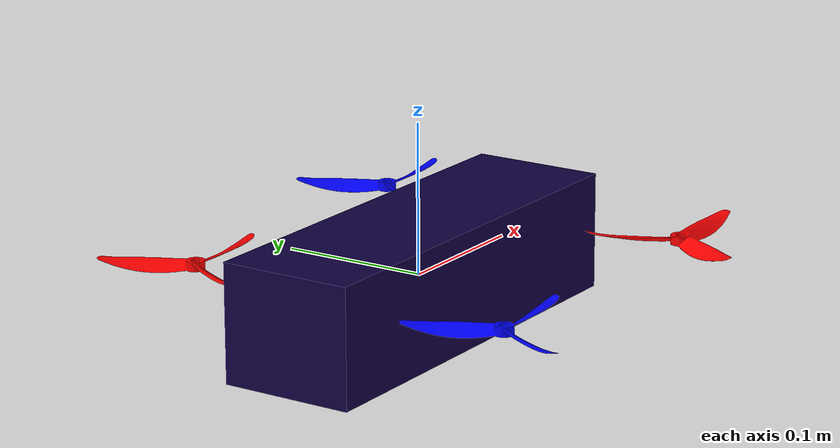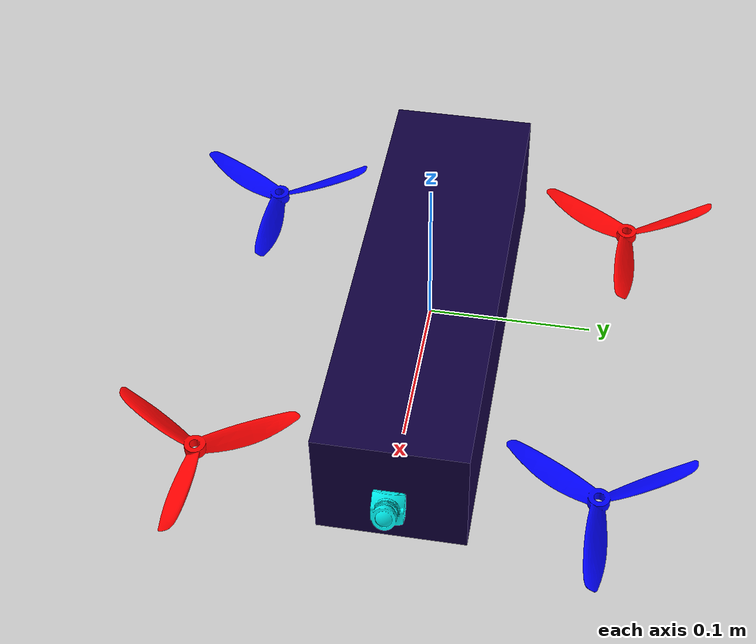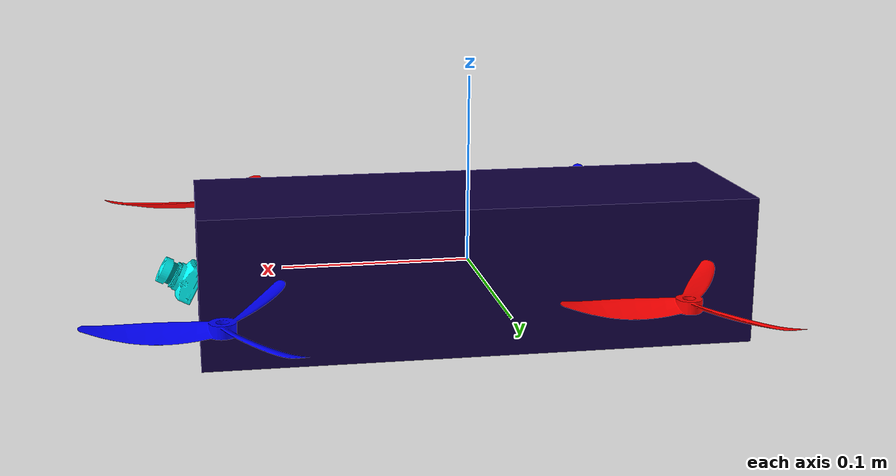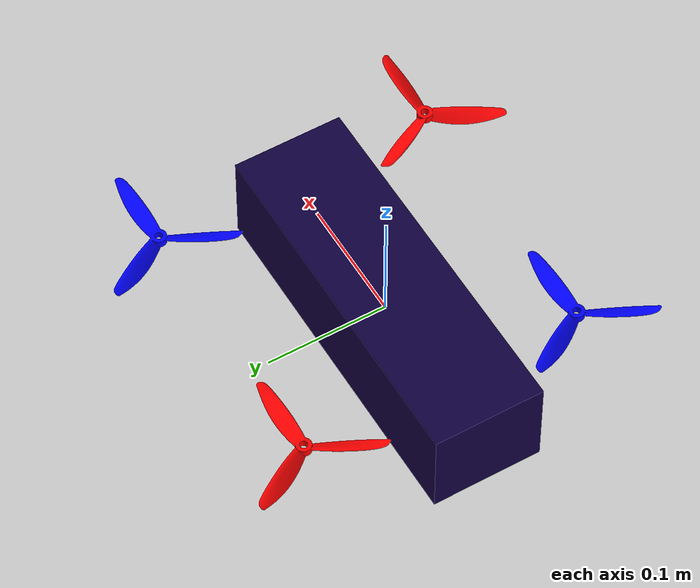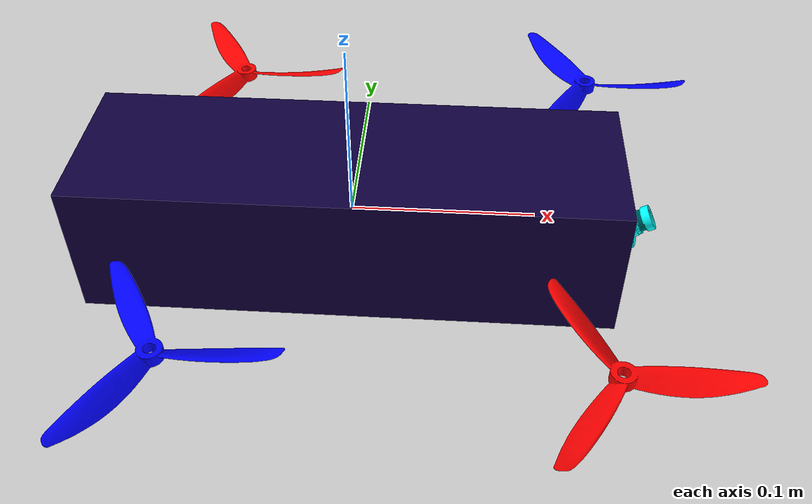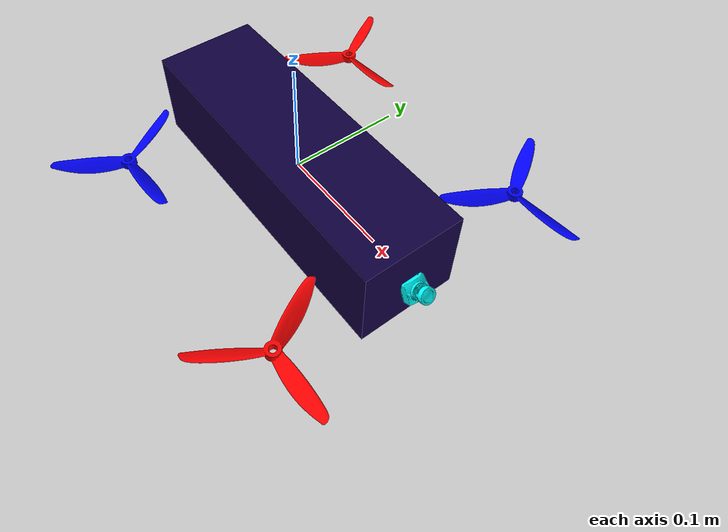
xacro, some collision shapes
<?xml version="1.0"?>
<robot name="fpv_drone" xmlns:xacro="http://www.ros.org/wiki/xacro">

  <xacro:arg name="package_name" default="fpv_drone" />
  <xacro:arg name="namespace" default="fpv_drone" />
  <xacro:arg name="rgb_base" default="0.0625 0 0.25" />
  <xacro:arg name="rgb_cam" default="0 1 1" />
  <xacro:arg name="rgb_ccw" default="1 0 0" />
  <xacro:arg name="rgb_cw" default="0 0 1" />
  <xacro:arg name="rpy" default="0 0 0" />
  <xacro:arg name="xyz" default="0 0 0" />
  <xacro:arg name="sitl" default="false" />
  <xacro:arg name="gimbal" default="false" />
  <xacro:arg name="instance" default="0" />

  <xacro:property name="package_name" value="$(arg package_name)" />
  <xacro:property name="namespace" value="$(arg namespace)" />
  <xacro:property name="rgb_base" value="$(arg rgb_base)" />
  <xacro:property name="rgb_cam" value="$(arg rgb_cam)" />
  <xacro:property name="rgb_ccw" value="$(arg rgb_ccw)" />
  <xacro:property name="rgb_cw" value="$(arg rgb_cw)" />
  <xacro:property name="rpy" value="$(arg rpy)" />
  <xacro:property name="xyz" value="$(arg xyz)" />
  <xacro:property name="sitl" value="$(arg sitl)" />
  <xacro:property name="gimbal" value="$(arg gimbal)" />
  <xacro:property name="instance" value="$(arg instance)" />

  <xacro:property name="parent_link" value="${namespace}_footprint" />

  <xacro:include filename="$(find fpv_drone)/urdf/macro_fpv_drone.xacro" />

  <link name="${parent_link}" />

  <xacro:macro_fpv_drone package_name="${package_name}" namespace="${namespace}"
    parent_link="${parent_link}" rgb_base="${rgb_base}" rgb_cam="${rgb_cam}"
    rgb_ccw="${rgb_ccw}" rgb_cw="${rgb_cw}" rpy="${rpy}" xyz="${xyz}" />

  <xacro:if value="${gimbal}">
    <xacro:include filename="$(find fpv_drone)/urdf/macro_gimbal_3d.xacro" />
    <xacro:macro_gimbal_3d package_name="${package_name}" namespace="${namespace}"
      parent_link="${parent_link}" rgb="${rgb_cam}" instance="${instance}"
      rpy="1.5707963267948966 0 1.5707963267948966" xyz="0 -0.01 -0.11775" />
  </xacro:if>

  <xacro:if value="${sitl}">
    <xacro:include filename="$(find fpv_drone)/urdf/macro_sitl_core.xacro" />
    <xacro:macro_sitl_core namespace="${namespace}" instance="${instance}" gimbal="${gimbal}" />
  </xacro:if>
</robot>

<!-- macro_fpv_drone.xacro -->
<robot xmlns:xacro="http://www.ros.org/wiki/xacro">

  <xacro:macro name="macro_fpv_drone"
    params="package_name:='fpv_drone' namespace:='fpv_drone' parent_link:='fpv_drone_footprint' rgb_base:='0.0625 0 0.25' rgb_cam:='0 1 1' rgb_ccw:='1 0 0' rgb_cw:='0 1 0' rpy:='0 0 0' xyz:='0 0 0'">

    <xacro:include filename="$(find ${package_name})/urdf/macro_fpv_base.xacro" />
    <xacro:include filename="$(find ${package_name})/urdf/macro_fpv_cam.xacro" />
    <xacro:include filename="$(find ${package_name})/urdf/macro_fpv_motor.xacro" />

    <xacro:macro_fpv_base package_name="${package_name}" namespace="${namespace}"
      parent_link="${parent_link}" rgb="${rgb_base}" rpy="${rpy}" xyz="${xyz}" />

    <xacro:macro_fpv_cam package_name="${package_name}" namespace="${namespace}"
      parent_link="${namespace}_base_link"
      rgb="${rgb_cam}" rpy="0 -0.47787 0" xyz="0.16346 -0.0002193 0.0023036" />

    <xacro:macro_fpv_motor package_name="${package_name}" namespace="${namespace}"
      parent_link="${namespace}_base_link"
      prefix="fr" rgb="${rgb_ccw}" rpy="0 0 0" xyz="0.1354 -0.11535 0.018367" />
    <xacro:macro_fpv_motor package_name="${package_name}" namespace="${namespace}"
      parent_link="${namespace}_base_link"
      prefix="bl" rgb="${rgb_ccw}" rpy="0 0 0" xyz="-0.081 0.1168 0.018367" />
    <xacro:macro_fpv_motor package_name="${package_name}" namespace="${namespace}"
      parent_link="${namespace}_base_link"
      prefix="fl" rgb="${rgb_cw}" rpy="0 0 0" xyz="0.1354 0.1168 0.018367" />
    <xacro:macro_fpv_motor package_name="${package_name}" namespace="${namespace}"
      parent_link="${namespace}_base_link"
      prefix="br" rgb="${rgb_cw}" rpy="0 0 0" xyz="-0.081 -0.11535 0.018367" />

    <gazebo>
      <plugin
        filename="gz-sim-joint-state-publisher-system"
        name="gz::sim::systems::JointStatePublisher">
      </plugin>
    </gazebo>
  </xacro:macro>
</robot>

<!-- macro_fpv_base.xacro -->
<robot xmlns:xacro="http://www.ros.org/wiki/xacro">

  <xacro:macro name="macro_fpv_base"
    params="package_name:='fpv_drone' namespace:='fpv_drone' parent_link:='fpv_drone_footprint' rgb:='0.0625 0 0.25' rpy:='0 0 0' xyz:='0 0 0'">

    <link name="${namespace}_base_link">
      <inertial>
        <origin xyz="0 0 0" rpy="0 0 0" />
        <mass value="1.5" />
        <inertia ixx="0.008" ixy="0" ixz="0" iyy="0.015" iyz="0" izz="0.017" />
      </inertial>

      <visual name="${namespace}_base_visual">
        <origin xyz="0 0 0" rpy="0 0 0" />
        <geometry>
          <mesh filename="package://${package_name}/meshes/fpv_drone/fpv_base.stl" scale="1 1 1" />
        </geometry>
        <material name="${namespace}_base_material">
          <color rgba="${rgb} 1" />
        </material>
      </visual>

      <collision name="${namespace}_base_collision">
        <origin xyz="0 0 0" rpy="0 0 0" />
        <geometry>
          <box size="0.29 0.09 0.0785" />
        </geometry>
      </collision>
    </link>

    <gazebo reference="${namespace}_base_link">
      <visual name="${namespace}_base_visual">
        <material>
          <diffuse>${rgb} 1</diffuse>
          <ambient>${rgb} 1</ambient>
          <specular>1 1 1 1</specular>
        </material>
      </visual>

      <collision name="${namespace}_base_collision">
        <surface>
          <contact>
            <ode>
              <max_vel>100.0</max_vel>
              <min_depth>0.001</min_depth>
            </ode>
          </contact>
          <friction>
            <ode>
              <mu>200000.0</mu>
              <mu2>200000.0</mu2>
            </ode>
          </friction>
        </surface>
      </collision>
    </gazebo>

    <joint name="${namespace}_base_joint" type="fixed">
      <parent link="${parent_link}" />
      <child link="${namespace}_base_link" />
      <origin xyz="0 0 0" rpy="0 0 0" />
    </joint>

    <link name="${namespace}_imu_link">
      <inertial>
        <origin xyz="0 0 0" rpy="0 0 0" />
        <mass value="0.15" />
        <inertia ixx="0.00001" ixy="0" ixz="0" iyy="0.00002" iyz="0" izz="0.00002" />
      </inertial>
    </link>

    <gazebo reference="${namespace}_imu_link">
      <sensor name="${namespace}_imu_sensor" type="imu">
        <always_on>true</always_on>
        <update_rate>1000.0</update_rate>
        <pose>0 0 0 3.14159265359 0 0</pose>
      </sensor>
    </gazebo>

    <joint name="${namespace}_imu_joint" type="revolute">
      <parent link="${namespace}_base_link" />
      <child link="${namespace}_imu_link" />
      <origin xyz="0 0 0" rpy="0 0 0" />
      <axis xyz="0 0 1" />
      <limit lower="0.0" upper="0.0" effort="0.0" velocity="0.0" />
      <dynamics damping="1.0" />
    </joint>

    <gazebo>
      <plugin
        filename="gz-sim-joint-state-publisher-system"
        name="gz::sim::systems::JointStatePublisher">
      </plugin>
    </gazebo>
  </xacro:macro>
</robot>

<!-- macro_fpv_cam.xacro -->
<robot xmlns:xacro="http://www.ros.org/wiki/xacro">

  <xacro:macro name="macro_fpv_cam"
    params="package_name:='fpv_drone' namespace:='fpv_drone' parent_link:='fpv_drone_footprint' rgb:='0 1 1' rpy:='0 0 0' xyz:='0 0 0'">

    <link name="${namespace}_cam_link">
      <inertial>
        <origin xyz="0 0 0" rpy="0 0 0" />
        <mass value="0.005036186" />
        <inertia ixx="2.2237e-07" ixy="5.4652e-12" ixz="2.2453e-12" iyy="1.3962e-07"
          iyz="-2.5999e-10" izz="1.4067e-07" />
      </inertial>

      <visual name="${namespace}_cam_visual">
        <origin xyz="0 0 0" rpy="0 0 0" />
        <geometry>
          <mesh filename="package://${package_name}/meshes/fpv_drone/fpv_cam.stl" scale="1 1 1" />
        </geometry>
        <material name="${namespace}_cam_material">
          <color rgba="${rgb} 1" />
        </material>
      </visual>

      <collision name="${namespace}_cam_collision">
        <origin xyz="0 0 0" rpy="0 0 0" />
        <geometry>
          <mesh filename="package://${package_name}/meshes/fpv_drone/fpv_cam.stl" scale="1 1 1" />
        </geometry>
      </collision>
    </link>

    <gazebo reference="${namespace}_cam_link">
      <visual name="${namespace}_cam_visual">
        <material>
          <diffuse>${rgb} 1</diffuse>
          <ambient>${rgb} 1</ambient>
          <specular>1 1 1 1</specular>
        </material>
      </visual>
    </gazebo>

    <joint name="${namespace}_cam_joint" type="fixed">
      <parent link="${parent_link}" />
      <child link="${namespace}_cam_link" />
      <origin xyz="${xyz}" rpy="${rpy}" />
    </joint>

    <gazebo>
      <plugin
        filename="gz-sim-joint-state-publisher-system"
        name="gz::sim::systems::JointStatePublisher">
      </plugin>
    </gazebo>
  </xacro:macro>
</robot>

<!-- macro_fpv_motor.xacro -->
<robot xmlns:xacro="http://www.ros.org/wiki/xacro">

  <xacro:macro name="macro_fpv_motor"
    params="package_name:='fpv_drone' namespace:='fpv_drone' parent_link:='fpv_drone_footprint' prefix:='fr' rgb:='1 1 1' rpy:='0 0 0' xyz:='0 0 0'">

    <link name="${namespace}_motor_${prefix}_link">
      <inertial>
        <origin xyz="0 0 0" rpy="0 0 0" />
        <mass value="0.0025" />
        <inertia ixx="1.28e-06" ixy="0" ixz="0" iyy="1.28e-06" iyz="0" izz="2.54e-06" />
      </inertial>

      <visual name="${namespace}_motor_${prefix}_visual">
        <origin xyz="0 0 0" rpy="0 0 0" />
        <geometry>
          <mesh filename="package://${package_name}/meshes/fpv_drone/fpv_motor_${prefix}.stl"
            scale="1 1 1" />
        </geometry>
        <material name="${namespace}_motor_${prefix}_material">
          <color rgba="${rgb} 1" />
        </material>
      </visual>

      <collision name="${namespace}_motor_${prefix}_collision">
        <origin xyz="0 0 0" rpy="0 0 0" />
        <geometry>
          <cylinder length="0.001" radius="0.0635" />
        </geometry>
      </collision>
    </link>

    <gazebo reference="${namespace}_motor_${prefix}_link">
      <visual name="${namespace}_motor_${prefix}_visual">
        <material>
          <diffuse>${rgb} 1</diffuse>
          <ambient>${rgb} 1</ambient>
          <specular>1 1 1 1</specular>
        </material>
      </visual>
    </gazebo>

    <joint name="${namespace}_motor_${prefix}_joint" type="revolute">
      <parent link="${parent_link}" />
      <child link="${namespace}_motor_${prefix}_link" />
      <origin xyz="${xyz}" rpy="${rpy}" />
      <axis xyz="0 0 1" />
      <limit lower="-1e+16" upper="1e+16" effort="1000" velocity="1000" />
      <dynamics damping="0.004" />
    </joint>

    <gazebo>
      <plugin
        filename="gz-sim-joint-state-publisher-system"
        name="gz::sim::systems::JointStatePublisher">
      </plugin>
    </gazebo>
  </xacro:macro>
</robot>
